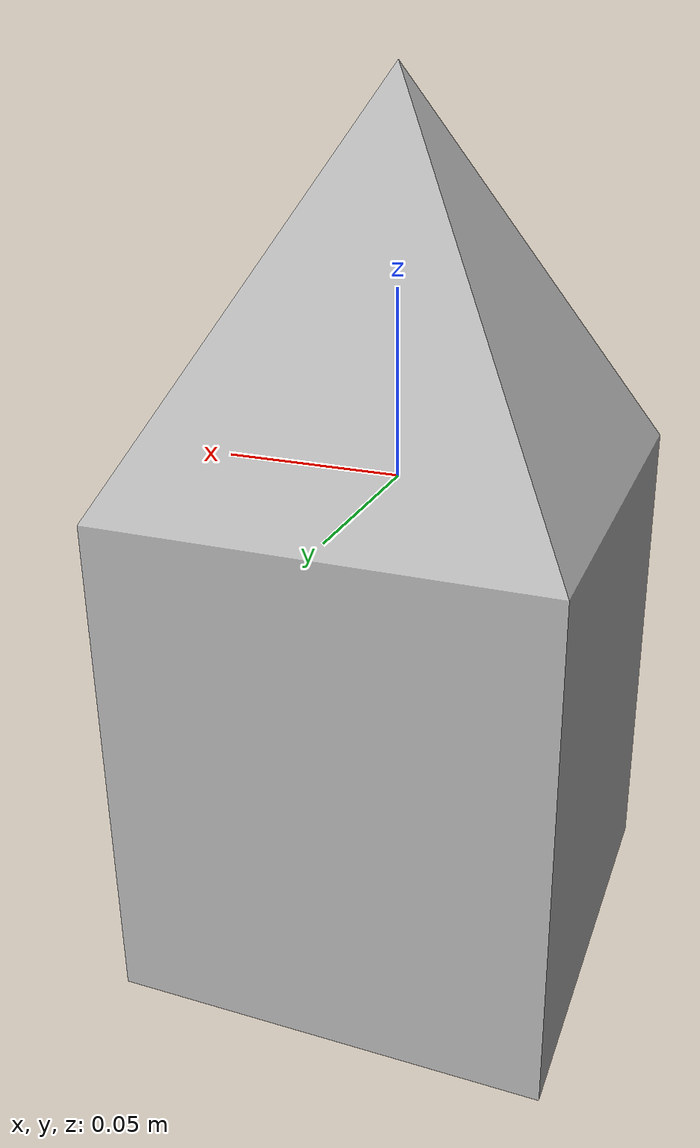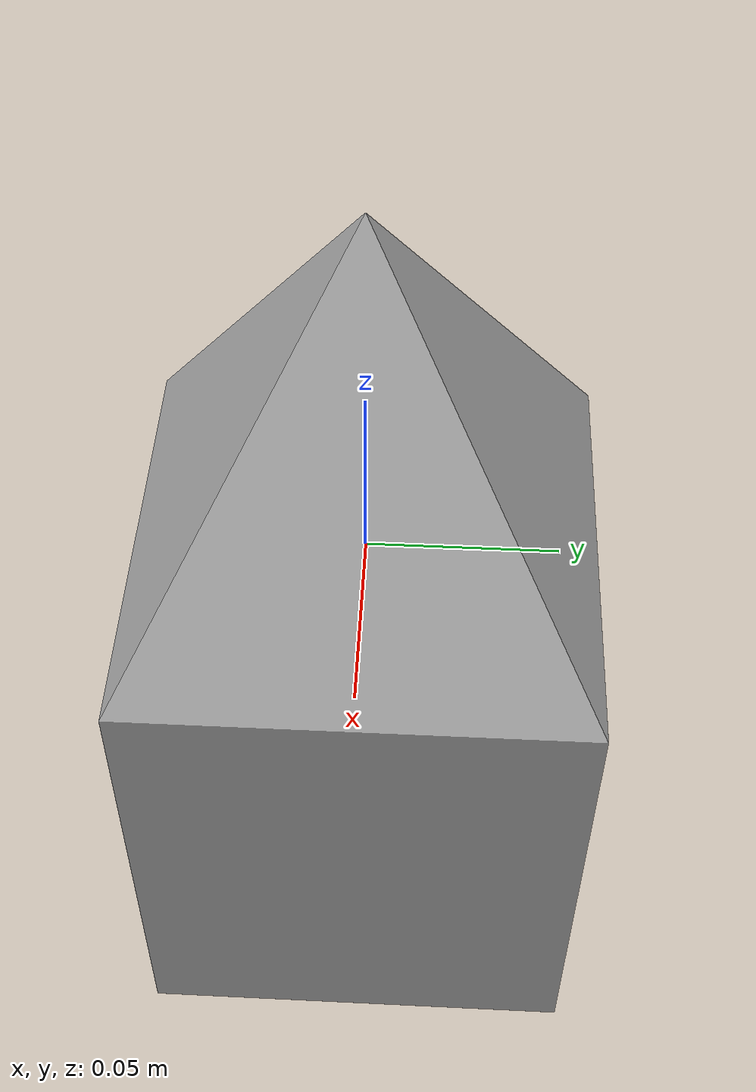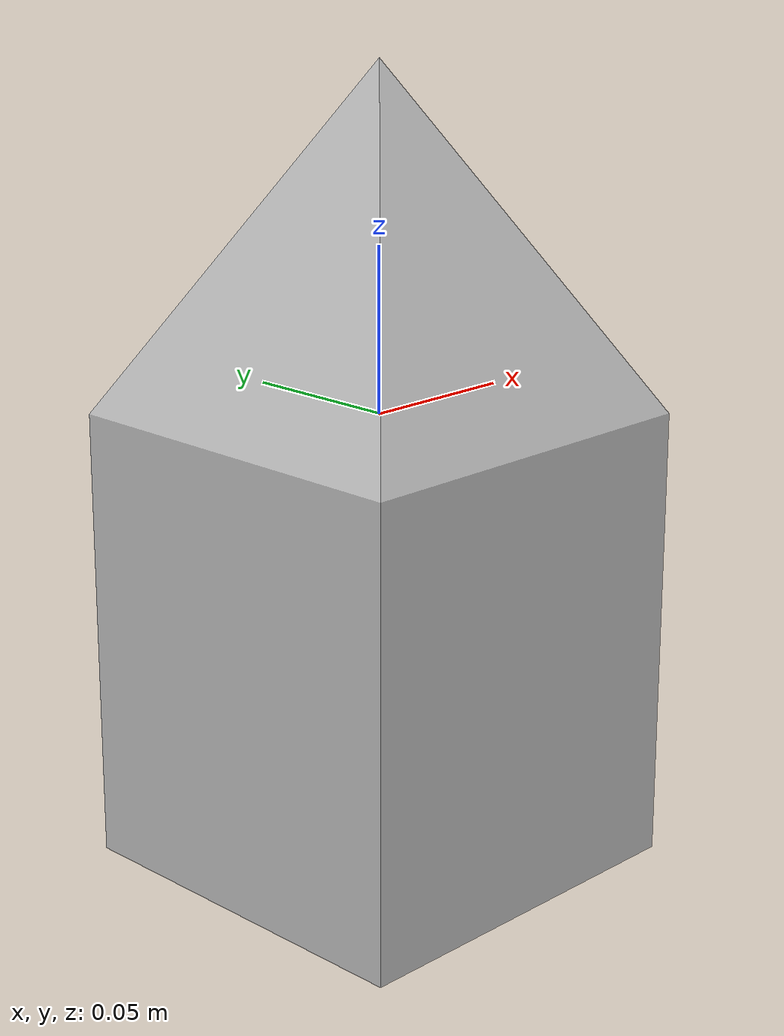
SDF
<?xml version="1.0" ?>
<sdf version="1.5">
  <model name="pilar_3">
    <link name="link">
      <collision name="collision">
        <geometry>
          <mesh>
            <scale>0.2 0.2 0.2</scale>
            <uri>model://pilar_3/meshes/pilar_3.stl</uri>
          </mesh>
        </geometry>
      </collision>
      <visual name="visual">
        <geometry>
          <mesh>
            <scale>0.2 0.2 0.2</scale>
            <uri>model://pilar_3/meshes/pilar_3.dae</uri>
          </mesh>
        </geometry>
      </visual>
    </link>
  </model>
</sdf>
